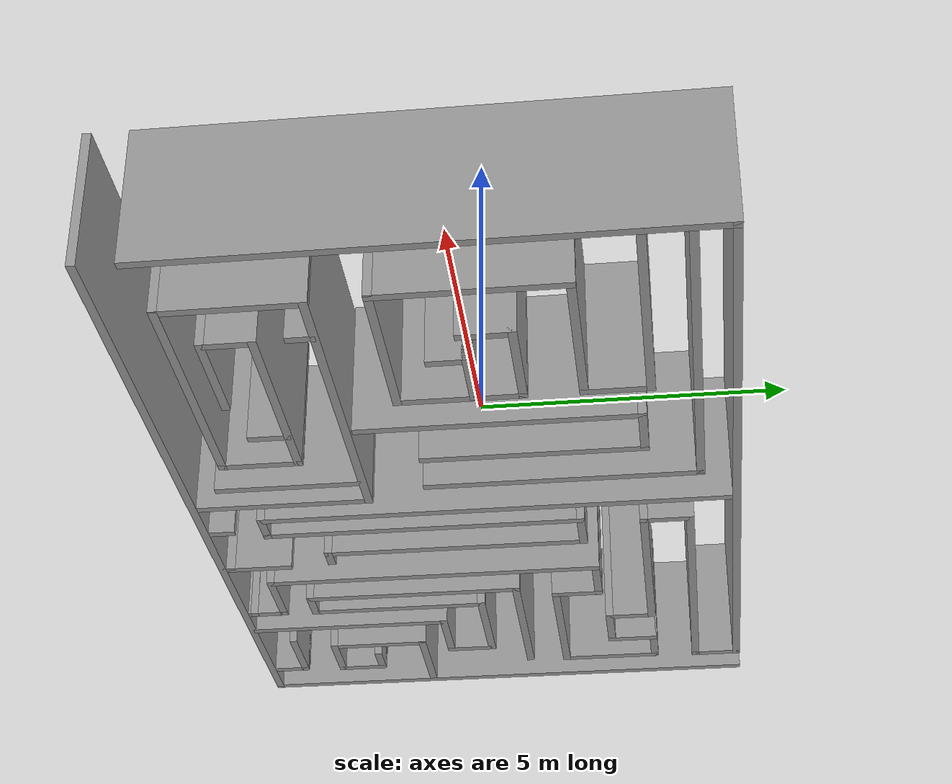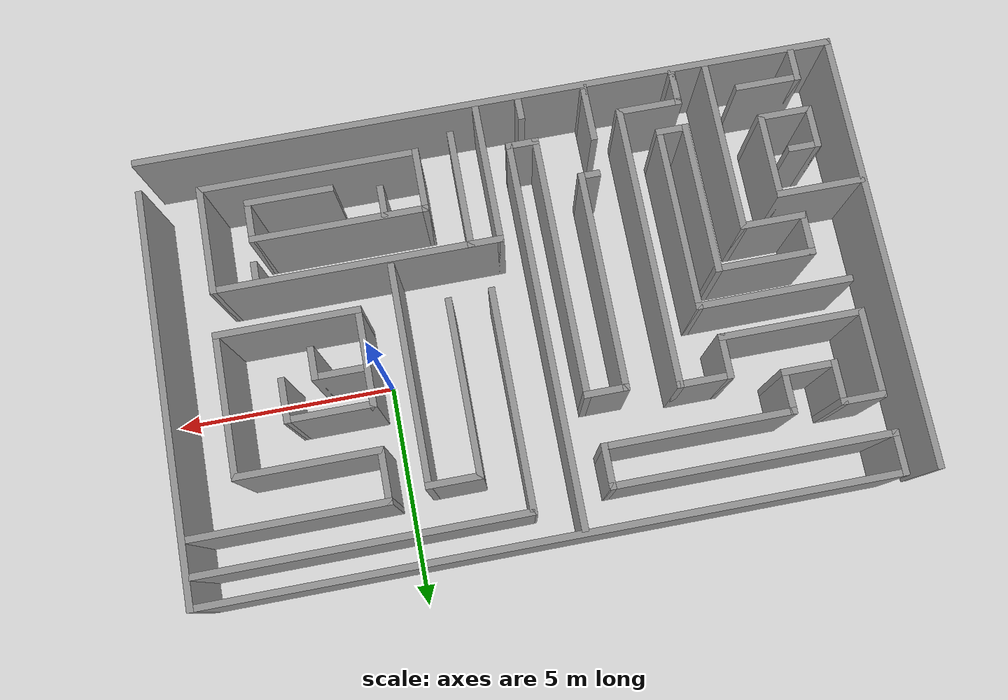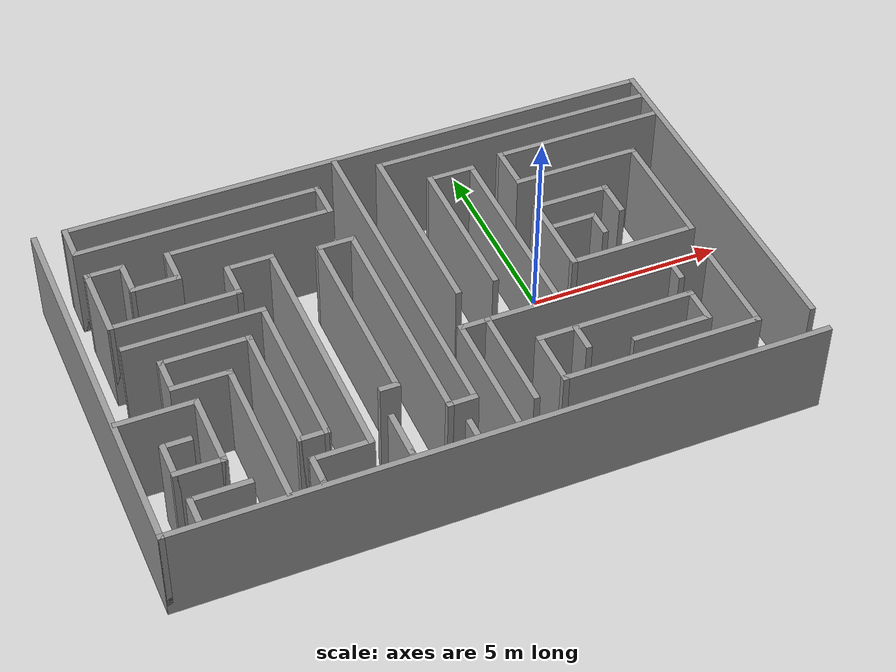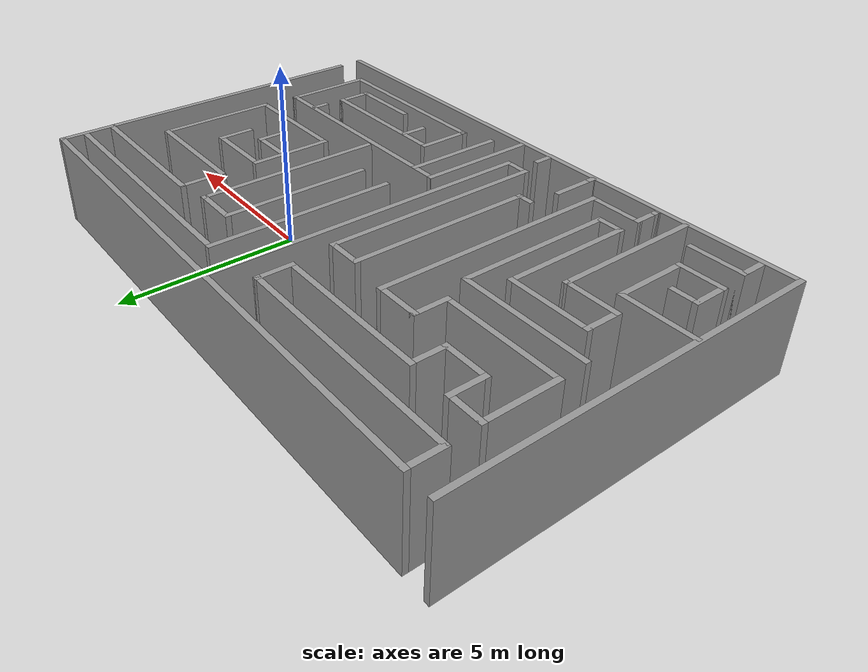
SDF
<?xml version='1.0'?>
<sdf version='1.6'>
  <model name='maze'>
    <pose frame=''>-3.28422 -0.705235 0 0 -0 0</pose>
    <link name='Wall_101'>
      <collision name='Wall_101_Collision'>
        <geometry>
          <box>
            <size>1.25 0.15 2.5</size>
          </box>
        </geometry>
        <pose frame=''>0 0 1.25 0 -0 0</pose>
      </collision>
      <visual name='Wall_101_Visual'>
        <pose frame=''>0 0 1.25 0 -0 0</pose>
        <geometry>
          <box>
            <size>1.25 0.15 2.5</size>
          </box>
        </geometry>
        <material>
          <script>
            <uri>file://media/materials/scripts/gazebo.material</uri>
            <name>Gazebo/Grey</name>
          </script>
          <ambient>1 1 1 1</ambient>
        </material>
        <meta>
          <layer>0</layer>
        </meta>
      </visual>
      <pose frame=''>4.1572 0.61365 0 0 -0 0</pose>
    </link>
    <link name='Wall_103'>
      <collision name='Wall_103_Collision'>
        <geometry>
          <box>
            <size>0.75 0.15 2.5</size>
          </box>
        </geometry>
        <pose frame=''>0 0 1.25 0 -0 0</pose>
      </collision>
      <visual name='Wall_103_Visual'>
        <pose frame=''>0 0 1.25 0 -0 0</pose>
        <geometry>
          <box>
            <size>0.75 0.15 2.5</size>
          </box>
        </geometry>
        <material>
          <script>
            <uri>file://media/materials/scripts/gazebo.material</uri>
            <name>Gazebo/Grey</name>
          </script>
          <ambient>1 1 1 1</ambient>
        </material>
        <meta>
          <layer>0</layer>
        </meta>
      </visual>
      <pose frame=''>4.7072 0.31365 0 0 0 -1.5708</pose>
    </link>
    <link name='Wall_105'>
      <collision name='Wall_105_Collision'>
        <geometry>
          <box>
            <size>2.75 0.15 2.5</size>
          </box>
        </geometry>
        <pose frame=''>0 0 1.25 0 -0 0</pose>
      </collision>
      <visual name='Wall_105_Visual'>
        <pose frame=''>0 0 1.25 0 -0 0</pose>
        <geometry>
          <box>
            <size>2.75 0.15 2.5</size>
          </box>
        </geometry>
        <material>
          <script>
            <uri>file://media/materials/scripts/gazebo.material</uri>
            <name>Gazebo/Grey</name>
          </script>
          <ambient>1 1 1 1</ambient>
        </material>
        <meta>
          <layer>0</layer>
        </meta>
      </visual>
      <pose frame=''>0.9093 -2.9875 0 0 0 -1.5708</pose>
    </link>
    <link name='Wall_107'>
      <collision name='Wall_107_Collision'>
        <geometry>
          <box>
            <size>0.5 0.15 2.5</size>
          </box>
        </geometry>
        <pose frame=''>0 0 1.25 0 -0 0</pose>
      </collision>
      <visual name='Wall_107_Visual'>
        <pose frame=''>0 0 1.25 0 -0 0</pose>
        <geometry>
          <box>
            <size>0.5 0.15 2.5</size>
          </box>
        </geometry>
        <material>
          <script>
            <uri>file://media/materials/scripts/gazebo.material</uri>
            <name>Gazebo/Grey</name>
          </script>
          <ambient>1 1 1 1</ambient>
        </material>
        <meta>
          <layer>0</layer>
        </meta>
      </visual>
      <pose frame=''>5.64385 -1.9154 0 0 0 -1.5708</pose>
    </link>
    <link name='Wall_11'>
      <collision name='Wall_11_Collision'>
        <geometry>
          <box>
            <size>15.25 0.15 2.5</size>
          </box>
        </geometry>
        <pose frame=''>0 0 1.25 0 -0 0</pose>
      </collision>
      <visual name='Wall_11_Visual'>
        <pose frame=''>0 0 1.25 0 -0 0</pose>
        <geometry>
          <box>
            <size>15.25 0.15 2.5</size>
          </box>
        </geometry>
        <material>
          <script>
            <uri>file://media/materials/scripts/gazebo.material</uri>
            <name>Gazebo/Grey</name>
          </script>
          <ambient>1 1 1 1</ambient>
        </material>
        <meta>
          <layer>0</layer>
        </meta>
      </visual>
      <pose frame=''>0.375 4.925 0 0 -0 3.14159</pose>
    </link>
    <link name='Wall_110'>
      <collision name='Wall_110_Collision'>
        <geometry>
          <box>
            <size>9.25 0.15 2.5</size>
          </box>
        </geometry>
        <pose frame=''>0 0 1.25 0 -0 0</pose>
      </collision>
      <visual name='Wall_110_Visual'>
        <pose frame=''>0 0 1.25 0 -0 0</pose>
        <geometry>
          <box>
            <size>9.25 0.15 2.5</size>
          </box>
        </geometry>
        <material>
          <script>
            <uri>file://media/materials/scripts/gazebo.material</uri>
            <name>Gazebo/Grey</name>
          </script>
          <ambient>1 1 1 1</ambient>
        </material>
        <meta>
          <layer>0</layer>
        </meta>
      </visual>
      <pose frame=''>7.925 0.375 0 0 0 -1.5708</pose>
    </link>
    <link name='Wall_12'>
      <collision name='Wall_12_Collision'>
        <geometry>
          <box>
            <size>1 0.15 2.5</size>
          </box>
        </geometry>
        <pose frame=''>0 0 1.25 0 -0 0</pose>
      </collision>
      <visual name='Wall_12_Visual'>
        <pose frame=''>0 0 1.25 0 -0 0</pose>
        <geometry>
          <box>
            <size>1 0.15 2.5</size>
          </box>
        </geometry>
        <material>
          <script>
            <uri>file://media/materials/scripts/gazebo.material</uri>
            <name>Gazebo/Grey</name>
          </script>
          <ambient>1 1 1 1</ambient>
        </material>
        <meta>
          <layer>0</layer>
        </meta>
      </visual>
      <pose frame=''>-7.175 4.5 0 0 0 -1.5708</pose>
    </link>
    <link name='Wall_13'>
      <collision name='Wall_13_Collision'>
        <geometry>
          <box>
            <size>6.25 0.15 2.5</size>
          </box>
        </geometry>
        <pose frame=''>0 0 1.25 0 -0 0</pose>
      </collision>
      <visual name='Wall_13_Visual'>
        <pose frame=''>0 0 1.25 0 -0 0</pose>
        <geometry>
          <box>
            <size>6.25 0.15 2.5</size>
          </box>
        </geometry>
        <material>
          <script>
            <uri>file://media/materials/scripts/gazebo.material</uri>
            <name>Gazebo/Grey</name>
          </script>
          <ambient>1 1 1 1</ambient>
        </material>
        <meta>
          <layer>0</layer>
        </meta>
      </visual>
      <pose frame=''>-4.125 4.075 0 0 -0 0</pose>
    </link>
    <link name='Wall_14'>
      <collision name='Wall_14_Collision'>
        <geometry>
          <box>
            <size>1 0.15 2.5</size>
          </box>
        </geometry>
        <pose frame=''>0 0 1.25 0 -0 0</pose>
      </collision>
      <visual name='Wall_14_Visual'>
        <pose frame=''>0 0 1.25 0 -0 0</pose>
        <geometry>
          <box>
            <size>1 0.15 2.5</size>
          </box>
        </geometry>
        <material>
          <script>
            <uri>file://media/materials/scripts/gazebo.material</uri>
            <name>Gazebo/Grey</name>
          </script>
          <ambient>1 1 1 1</ambient>
        </material>
        <meta>
          <layer>0</layer>
        </meta>
      </visual>
      <pose frame=''>-1.075 3.65 0 0 0 -1.5708</pose>
    </link>
    <link name='Wall_15'>
      <collision name='Wall_15_Collision'>
        <geometry>
          <box>
            <size>4.25 0.15 2.5</size>
          </box>
        </geometry>
        <pose frame=''>0 0 1.25 0 -0 0</pose>
      </collision>
      <visual name='Wall_15_Visual'>
        <pose frame=''>0 0 1.25 0 -0 0</pose>
        <geometry>
          <box>
            <size>4.25 0.15 2.5</size>
          </box>
        </geometry>
        <material>
          <script>
            <uri>file://media/materials/scripts/gazebo.material</uri>
            <name>Gazebo/Grey</name>
          </script>
          <ambient>1 1 1 1</ambient>
        </material>
        <meta>
          <layer>0</layer>
        </meta>
      </visual>
      <pose frame=''>-3.125 3.225 0 0 -0 3.14159</pose>
    </link>
    <link name='Wall_18'>
      <collision name='Wall_18_Collision'>
        <geometry>
          <box>
            <size>1 0.15 2.5</size>
          </box>
        </geometry>
        <pose frame=''>0 0 1.25 0 -0 0</pose>
      </collision>
      <visual name='Wall_18_Visual'>
        <pose frame=''>0 0 1.25 0 -0 0</pose>
        <geometry>
          <box>
            <size>1 0.15 2.5</size>
          </box>
        </geometry>
        <material>
          <script>
            <uri>file://media/materials/scripts/gazebo.material</uri>
            <name>Gazebo/Grey</name>
          </script>
          <ambient>1 1 1 1</ambient>
        </material>
        <meta>
          <layer>0</layer>
        </meta>
      </visual>
      <pose frame=''>-5.175 2.8 0 0 0 -1.5708</pose>
    </link>
    <link name='Wall_19'>
      <collision name='Wall_19_Collision'>
        <geometry>
          <box>
            <size>1.25 0.15 2.5</size>
          </box>
        </geometry>
        <pose frame=''>0 0 1.25 0 -0 0</pose>
      </collision>
      <visual name='Wall_19_Visual'>
        <pose frame=''>0 0 1.25 0 -0 0</pose>
        <geometry>
          <box>
            <size>1.25 0.15 2.5</size>
          </box>
        </geometry>
        <material>
          <script>
            <uri>file://media/materials/scripts/gazebo.material</uri>
            <name>Gazebo/Grey</name>
          </script>
          <ambient>1 1 1 1</ambient>
        </material>
        <meta>
          <layer>0</layer>
        </meta>
      </visual>
      <pose frame=''>-5.725 2.375 0 0 -0 3.14159</pose>
    </link>
    <link name='Wall_20'>
      <collision name='Wall_20_Collision'>
        <geometry>
          <box>
            <size>1 0.15 2.5</size>
          </box>
        </geometry>
        <pose frame=''>0 0 1.25 0 -0 0</pose>
      </collision>
      <visual name='Wall_20_Visual'>
        <pose frame=''>0 0 1.25 0 -0 0</pose>
        <geometry>
          <box>
            <size>1 0.15 2.5</size>
          </box>
        </geometry>
        <material>
          <script>
            <uri>file://media/materials/scripts/gazebo.material</uri>
            <name>Gazebo/Grey</name>
          </script>
          <ambient>1 1 1 1</ambient>
        </material>
        <meta>
          <layer>0</layer>
        </meta>
      </visual>
      <pose frame=''>-6.275 2.8 0 0 -0 1.5708</pose>
    </link>
    <link name='Wall_21'>
      <collision name='Wall_21_Collision'>
        <geometry>
          <box>
            <size>1 0.15 2.5</size>
          </box>
        </geometry>
        <pose frame=''>0 0 1.25 0 -0 0</pose>
      </collision>
      <visual name='Wall_21_Visual'>
        <pose frame=''>0 0 1.25 0 -0 0</pose>
        <geometry>
          <box>
            <size>1 0.15 2.5</size>
          </box>
        </geometry>
        <material>
          <script>
            <uri>file://media/materials/scripts/gazebo.material</uri>
            <name>Gazebo/Grey</name>
          </script>
          <ambient>1 1 1 1</ambient>
        </material>
        <meta>
          <layer>0</layer>
        </meta>
      </visual>
      <pose frame=''>-6.7 3.225 0 0 -0 3.14159</pose>
    </link>
    <link name='Wall_22'>
      <collision name='Wall_22_Collision'>
        <geometry>
          <box>
            <size>2 0.15 2.5</size>
          </box>
        </geometry>
        <pose frame=''>0 0 1.25 0 -0 0</pose>
      </collision>
      <visual name='Wall_22_Visual'>
        <pose frame=''>0 0 1.25 0 -0 0</pose>
        <geometry>
          <box>
            <size>2 0.15 2.5</size>
          </box>
        </geometry>
        <material>
          <script>
            <uri>file://media/materials/scripts/gazebo.material</uri>
            <name>Gazebo/Grey</name>
          </script>
          <ambient>1 1 1 1</ambient>
        </material>
        <meta>
          <layer>0</layer>
        </meta>
      </visual>
      <pose frame=''>-7.125 2.3 0 0 0 -1.5708</pose>
    </link>
    <link name='Wall_23'>
      <collision name='Wall_23_Collision'>
        <geometry>
          <box>
            <size>3.25 0.15 2.5</size>
          </box>
        </geometry>
        <pose frame=''>0 0 1.25 0 -0 0</pose>
      </collision>
      <visual name='Wall_23_Visual'>
        <pose frame=''>0 0 1.25 0 -0 0</pose>
        <geometry>
          <box>
            <size>3.25 0.15 2.5</size>
          </box>
        </geometry>
        <material>
          <script>
            <uri>file://media/materials/scripts/gazebo.material</uri>
            <name>Gazebo/Grey</name>
          </script>
          <ambient>1 1 1 1</ambient>
        </material>
        <meta>
          <layer>0</layer>
        </meta>
      </visual>
      <pose frame=''>-5.575 1.375 0 0 -0 0</pose>
    </link>
    <link name='Wall_24'>
      <collision name='Wall_24_Collision'>
        <geometry>
          <box>
            <size>1 0.15 2.5</size>
          </box>
        </geometry>
        <pose frame=''>0 0 1.25 0 -0 0</pose>
      </collision>
      <visual name='Wall_24_Visual'>
        <pose frame=''>0 0 1.25 0 -0 0</pose>
        <geometry>
          <box>
            <size>1 0.15 2.5</size>
          </box>
        </geometry>
        <material>
          <script>
            <uri>file://media/materials/scripts/gazebo.material</uri>
            <name>Gazebo/Grey</name>
          </script>
          <ambient>1 1 1 1</ambient>
        </material>
        <meta>
          <layer>0</layer>
        </meta>
      </visual>
      <pose frame=''>-4.025 1.8 0 0 -0 1.5708</pose>
    </link>
    <link name='Wall_25'>
      <collision name='Wall_25_Collision'>
        <geometry>
          <box>
            <size>1.25 0.15 2.5</size>
          </box>
        </geometry>
        <pose frame=''>0 0 1.25 0 -0 0</pose>
      </collision>
      <visual name='Wall_25_Visual'>
        <pose frame=''>0 0 1.25 0 -0 0</pose>
        <geometry>
          <box>
            <size>1.25 0.15 2.5</size>
          </box>
        </geometry>
        <material>
          <script>
            <uri>file://media/materials/scripts/gazebo.material</uri>
            <name>Gazebo/Grey</name>
          </script>
          <ambient>1 1 1 1</ambient>
        </material>
        <meta>
          <layer>0</layer>
        </meta>
      </visual>
      <pose frame=''>-3.475 2.225 0 0 -0 0</pose>
    </link>
    <link name='Wall_26'>
      <collision name='Wall_26_Collision'>
        <geometry>
          <box>
            <size>6.5 0.15 2.5</size>
          </box>
        </geometry>
        <pose frame=''>0 0 1.25 0 -0 0</pose>
      </collision>
      <visual name='Wall_26_Visual'>
        <pose frame=''>0 0 1.25 0 -0 0</pose>
        <geometry>
          <box>
            <size>6.5 0.15 2.5</size>
          </box>
        </geometry>
        <material>
          <script>
            <uri>file://media/materials/scripts/gazebo.material</uri>
            <name>Gazebo/Grey</name>
          </script>
          <ambient>1 1 1 1</ambient>
        </material>
        <meta>
          <layer>0</layer>
        </meta>
      </visual>
      <pose frame=''>-2.925 -0.95 0 0 0 -1.5708</pose>
    </link>
    <link name='Wall_28'>
      <collision name='Wall_28_Collision'>
        <geometry>
          <box>
            <size>3.5 0.15 2.5</size>
          </box>
        </geometry>
        <pose frame=''>0 0 1.25 0 -0 0</pose>
      </collision>
      <visual name='Wall_28_Visual'>
        <pose frame=''>0 0 1.25 0 -0 0</pose>
        <geometry>
          <box>
            <size>3.5 0.15 2.5</size>
          </box>
        </geometry>
        <material>
          <script>
            <uri>file://media/materials/scripts/gazebo.material</uri>
            <name>Gazebo/Grey</name>
          </script>
          <ambient>1 1 1 1</ambient>
        </material>
        <meta>
          <layer>0</layer>
        </meta>
      </visual>
      <pose frame=''>-5.37715 0.61365 0 0 -0 0</pose>
    </link>
    <link name='Wall_29'>
      <collision name='Wall_29_Collision'>
        <geometry>
          <box>
            <size>4.25 0.15 2.5</size>
          </box>
        </geometry>
        <pose frame=''>0 0 1.25 0 -0 0</pose>
      </collision>
      <visual name='Wall_29_Visual'>
        <pose frame=''>0 0 1.25 0 -0 0</pose>
        <geometry>
          <box>
            <size>4.25 0.15 2.5</size>
          </box>
        </geometry>
        <material>
          <script>
            <uri>file://media/materials/scripts/gazebo.material</uri>
            <name>Gazebo/Grey</name>
          </script>
          <ambient>1 1 1 1</ambient>
        </material>
        <meta>
          <layer>0</layer>
        </meta>
      </visual>
      <pose frame=''>-3.70215 -1.43635 0 0 0 -1.5708</pose>
    </link>
    <link name='Wall_32'>
      <collision name='Wall_32_Collision'>
        <geometry>
          <box>
            <size>0.75 0.15 2.5</size>
          </box>
        </geometry>
        <pose frame=''>0 0 1.25 0 -0 0</pose>
      </collision>
      <visual name='Wall_32_Visual'>
        <pose frame=''>0 0 1.25 0 -0 0</pose>
        <geometry>
          <box>
            <size>0.75 0.15 2.5</size>
          </box>
        </geometry>
        <material>
          <script>
            <uri>file://media/materials/scripts/gazebo.material</uri>
            <name>Gazebo/Grey</name>
          </script>
          <ambient>1 1 1 1</ambient>
        </material>
        <meta>
          <layer>0</layer>
        </meta>
      </visual>
      <pose frame=''>-4.00215 -3.48635 0 0 -0 3.14159</pose>
    </link>
    <link name='Wall_33'>
      <collision name='Wall_33_Collision'>
        <geometry>
          <box>
            <size>3.5 0.15 2.5</size>
          </box>
        </geometry>
        <pose frame=''>0 0 1.25 0 -0 0</pose>
      </collision>
      <visual name='Wall_33_Visual'>
        <pose frame=''>0 0 1.25 0 -0 0</pose>
        <geometry>
          <box>
            <size>3.5 0.15 2.5</size>
          </box>
        </geometry>
        <material>
          <script>
            <uri>file://media/materials/scripts/gazebo.material</uri>
            <name>Gazebo/Grey</name>
          </script>
          <ambient>1 1 1 1</ambient>
        </material>
        <meta>
          <layer>0</layer>
        </meta>
      </visual>
      <pose frame=''>-4.30215 -1.81135 0 0 -0 1.5708</pose>
    </link>
    <link name='Wall_34'>
      <collision name='Wall_34_Collision'>
        <geometry>
          <box>
            <size>2.25 0.15 2.5</size>
          </box>
        </geometry>
        <pose frame=''>0 0 1.25 0 -0 0</pose>
      </collision>
      <visual name='Wall_34_Visual'>
        <pose frame=''>0 0 1.25 0 -0 0</pose>
        <geometry>
          <box>
            <size>2.25 0.15 2.5</size>
          </box>
        </geometry>
        <material>
          <script>
            <uri>file://media/materials/scripts/gazebo.material</uri>
            <name>Gazebo/Grey</name>
          </script>
          <ambient>1 1 1 1</ambient>
        </material>
        <meta>
          <layer>0</layer>
        </meta>
      </visual>
      <pose frame=''>-5.35215 -0.13635 0 0 -0 3.14159</pose>
    </link>
    <link name='Wall_37'>
      <collision name='Wall_37_Collision'>
        <geometry>
          <box>
            <size>1 0.15 2.5</size>
          </box>
        </geometry>
        <pose frame=''>0 0 1.25 0 -0 0</pose>
      </collision>
      <visual name='Wall_37_Visual'>
        <pose frame=''>0 0 1.25 0 -0 0</pose>
        <geometry>
          <box>
            <size>1 0.15 2.5</size>
          </box>
        </geometry>
        <material>
          <script>
            <uri>file://media/materials/scripts/gazebo.material</uri>
            <name>Gazebo/Grey</name>
          </script>
          <ambient>1 1 1 1</ambient>
        </material>
        <meta>
          <layer>0</layer>
        </meta>
      </visual>
      <pose frame=''>-6.40215 -0.56135 0 0 0 -1.5708</pose>
    </link>
    <link name='Wall_38'>
      <collision name='Wall_38_Collision'>
        <geometry>
          <box>
            <size>1.5 0.15 2.5</size>
          </box>
        </geometry>
        <pose frame=''>0 0 1.25 0 -0 0</pose>
      </collision>
      <visual name='Wall_38_Visual'>
        <pose frame=''>0 0 1.25 0 -0 0</pose>
        <geometry>
          <box>
            <size>1.5 0.15 2.5</size>
          </box>
        </geometry>
        <material>
          <script>
            <uri>file://media/materials/scripts/gazebo.material</uri>
            <name>Gazebo/Grey</name>
          </script>
          <ambient>1 1 1 1</ambient>
        </material>
        <meta>
          <layer>0</layer>
        </meta>
      </visual>
      <pose frame=''>-5.72715 -0.98635 0 0 -0 0</pose>
    </link>
    <link name='Wall_39'>
      <collision name='Wall_39_Collision'>
        <geometry>
          <box>
            <size>4 0.15 2.5</size>
          </box>
        </geometry>
        <pose frame=''>0 0 1.25 0 -0 0</pose>
      </collision>
      <visual name='Wall_39_Visual'>
        <pose frame=''>0 0 1.25 0 -0 0</pose>
        <geometry>
          <box>
            <size>4 0.15 2.5</size>
          </box>
        </geometry>
        <material>
          <script>
            <uri>file://media/materials/scripts/gazebo.material</uri>
            <name>Gazebo/Grey</name>
          </script>
          <ambient>1 1 1 1</ambient>
        </material>
        <meta>
          <layer>0</layer>
        </meta>
      </visual>
      <pose frame=''>-5.05215 -2.91135 0 0 0 -1.5708</pose>
    </link>
    <link name='Wall_41'>
      <collision name='Wall_41_Collision'>
        <geometry>
          <box>
            <size>2 0.15 2.5</size>
          </box>
        </geometry>
        <pose frame=''>0 0 1.25 0 -0 0</pose>
      </collision>
      <visual name='Wall_41_Visual'>
        <pose frame=''>0 0 1.25 0 -0 0</pose>
        <geometry>
          <box>
            <size>2 0.15 2.5</size>
          </box>
        </geometry>
        <material>
          <script>
            <uri>file://media/materials/scripts/gazebo.material</uri>
            <name>Gazebo/Grey</name>
          </script>
          <ambient>1 1 1 1</ambient>
        </material>
        <meta>
          <layer>0</layer>
        </meta>
      </visual>
      <pose frame=''>-6.9471 -1.55525 0 0 -0 0</pose>
    </link>
    <link name='Wall_45'>
      <collision name='Wall_45_Collision'>
        <geometry>
          <box>
            <size>2 0.15 2.5</size>
          </box>
        </geometry>
        <pose frame=''>0 0 1.25 0 -0 0</pose>
      </collision>
      <visual name='Wall_45_Visual'>
        <pose frame=''>0 0 1.25 0 -0 0</pose>
        <geometry>
          <box>
            <size>2 0.15 2.5</size>
          </box>
        </geometry>
        <material>
          <script>
            <uri>file://media/materials/scripts/gazebo.material</uri>
            <name>Gazebo/Grey</name>
          </script>
          <ambient>1 1 1 1</ambient>
        </material>
        <meta>
          <layer>0</layer>
        </meta>
      </visual>
      <pose frame=''>-6.0221 -2.48025 0 0 0 -1.5708</pose>
    </link>
    <link name='Wall_46'>
      <collision name='Wall_46_Collision'>
        <geometry>
          <box>
            <size>1.25 0.15 2.5</size>
          </box>
        </geometry>
        <pose frame=''>0 0 1.25 0 -0 0</pose>
      </collision>
      <visual name='Wall_46_Visual'>
        <pose frame=''>0 0 1.25 0 -0 0</pose>
        <geometry>
          <box>
            <size>1.25 0.15 2.5</size>
          </box>
        </geometry>
        <material>
          <script>
            <uri>file://media/materials/scripts/gazebo.material</uri>
            <name>Gazebo/Grey</name>
          </script>
          <ambient>1 1 1 1</ambient>
        </material>
        <meta>
          <layer>0</layer>
        </meta>
      </visual>
      <pose frame=''>-6.5721 -3.40525 0 0 -0 3.14159</pose>
    </link>
    <link name='Wall_47'>
      <collision name='Wall_47_Collision'>
        <geometry>
          <box>
            <size>1 0.15 2.5</size>
          </box>
        </geometry>
        <pose frame=''>0 0 1.25 0 -0 0</pose>
      </collision>
      <visual name='Wall_47_Visual'>
        <pose frame=''>0 0 1.25 0 -0 0</pose>
        <geometry>
          <box>
            <size>1 0.15 2.5</size>
          </box>
        </geometry>
        <material>
          <script>
            <uri>file://media/materials/scripts/gazebo.material</uri>
            <name>Gazebo/Grey</name>
          </script>
          <ambient>1 1 1 1</ambient>
        </material>
        <meta>
          <layer>0</layer>
        </meta>
      </visual>
      <pose frame=''>-7.1221 -2.98025 0 0 -0 1.5708</pose>
    </link>
    <link name='Wall_48'>
      <collision name='Wall_48_Collision'>
        <geometry>
          <box>
            <size>0.75 0.15 2.5</size>
          </box>
        </geometry>
        <pose frame=''>0 0 1.25 0 -0 0</pose>
      </collision>
      <visual name='Wall_48_Visual'>
        <pose frame=''>0 0 1.25 0 -0 0</pose>
        <geometry>
          <box>
            <size>0.75 0.15 2.5</size>
          </box>
        </geometry>
        <material>
          <script>
            <uri>file://media/materials/scripts/gazebo.material</uri>
            <name>Gazebo/Grey</name>
          </script>
          <ambient>1 1 1 1</ambient>
        </material>
        <meta>
          <layer>0</layer>
        </meta>
      </visual>
      <pose frame=''>-6.8221 -2.55525 0 0 -0 0</pose>
    </link>
    <link name='Wall_50'>
      <collision name='Wall_50_Collision'>
        <geometry>
          <box>
            <size>0.75 0.15 2.5</size>
          </box>
        </geometry>
        <pose frame=''>0 0 1.25 0 -0 0</pose>
      </collision>
      <visual name='Wall_50_Visual'>
        <pose frame=''>0 0 1.25 0 -0 0</pose>
        <geometry>
          <box>
            <size>0.75 0.15 2.5</size>
          </box>
        </geometry>
        <material>
          <script>
            <uri>file://media/materials/scripts/gazebo.material</uri>
            <name>Gazebo/Grey</name>
          </script>
          <ambient>1 1 1 1</ambient>
        </material>
        <meta>
          <layer>0</layer>
        </meta>
      </visual>
      <pose frame=''>-7.05215 -4.5086 0 0 -0 1.5708</pose>
    </link>
    <link name='Wall_51'>
      <collision name='Wall_51_Collision'>
        <geometry>
          <box>
            <size>1.5 0.15 2.5</size>
          </box>
        </geometry>
        <pose frame=''>0 0 1.25 0 -0 0</pose>
      </collision>
      <visual name='Wall_51_Visual'>
        <pose frame=''>0 0 1.25 0 -0 0</pose>
        <geometry>
          <box>
            <size>1.5 0.15 2.5</size>
          </box>
        </geometry>
        <material>
          <script>
            <uri>file://media/materials/scripts/gazebo.material</uri>
            <name>Gazebo/Grey</name>
          </script>
          <ambient>1 1 1 1</ambient>
        </material>
        <meta>
          <layer>0</layer>
        </meta>
      </visual>
      <pose frame=''>-6.37715 -4.2086 0 0 -0 0</pose>
    </link>
    <link name='Wall_53'>
      <collision name='Wall_53_Collision'>
        <geometry>
          <box>
            <size>8.75 0.15 2.5</size>
          </box>
        </geometry>
        <pose frame=''>0 0 1.25 0 -0 0</pose>
      </collision>
      <visual name='Wall_53_Visual'>
        <pose frame=''>0 0 1.25 0 -0 0</pose>
        <geometry>
          <box>
            <size>8.75 0.15 2.5</size>
          </box>
        </geometry>
        <material>
          <script>
            <uri>file://media/materials/scripts/gazebo.material</uri>
            <name>Gazebo/Grey</name>
          </script>
          <ambient>1 1 1 1</ambient>
        </material>
        <meta>
          <layer>0</layer>
        </meta>
      </visual>
      <pose frame=''>-0.33385 0.5192 0 0 0 -1.5708</pose>
    </link>
    <link name='Wall_54'>
      <collision name='Wall_54_Collision'>
        <geometry>
          <box>
            <size>0.75 0.15 2.5</size>
          </box>
        </geometry>
        <pose frame=''>0 0 1.25 0 -0 0</pose>
      </collision>
      <visual name='Wall_54_Visual'>
        <pose frame=''>0 0 1.25 0 -0 0</pose>
        <geometry>
          <box>
            <size>0.75 0.15 2.5</size>
          </box>
        </geometry>
        <material>
          <script>
            <uri>file://media/materials/scripts/gazebo.material</uri>
            <name>Gazebo/Grey</name>
          </script>
          <ambient>1 1 1 1</ambient>
        </material>
        <meta>
          <layer>0</layer>
        </meta>
      </visual>
      <pose frame=''>-0.63385 -3.7808 0 0 -0 3.14159</pose>
    </link>
    <link name='Wall_55'>
      <collision name='Wall_55_Collision'>
        <geometry>
          <box>
            <size>6 0.15 2.5</size>
          </box>
        </geometry>
        <pose frame=''>0 0 1.25 0 -0 0</pose>
      </collision>
      <visual name='Wall_55_Visual'>
        <pose frame=''>0 0 1.25 0 -0 0</pose>
        <geometry>
          <box>
            <size>6 0.15 2.5</size>
          </box>
        </geometry>
        <material>
          <script>
            <uri>file://media/materials/scripts/gazebo.material</uri>
            <name>Gazebo/Grey</name>
          </script>
          <ambient>1 1 1 1</ambient>
        </material>
        <meta>
          <layer>0</layer>
        </meta>
      </visual>
      <pose frame=''>-0.93385 -0.8558 0 0 -0 1.5708</pose>
    </link>
    <link name='Wall_56'>
      <collision name='Wall_56_Collision'>
        <geometry>
          <box>
            <size>1 0.15 2.5</size>
          </box>
        </geometry>
        <pose frame=''>0 0 1.25 0 -0 0</pose>
      </collision>
      <visual name='Wall_56_Visual'>
        <pose frame=''>0 0 1.25 0 -0 0</pose>
        <geometry>
          <box>
            <size>1 0.15 2.5</size>
          </box>
        </geometry>
        <material>
          <script>
            <uri>file://media/materials/scripts/gazebo.material</uri>
            <name>Gazebo/Grey</name>
          </script>
          <ambient>1 1 1 1</ambient>
        </material>
        <meta>
          <layer>0</layer>
        </meta>
      </visual>
      <pose frame=''>-1.35885 2.0692 0 0 -0 3.14159</pose>
    </link>
    <link name='Wall_57'>
      <collision name='Wall_57_Collision'>
        <geometry>
          <box>
            <size>5 0.15 2.5</size>
          </box>
        </geometry>
        <pose frame=''>0 0 1.25 0 -0 0</pose>
      </collision>
      <visual name='Wall_57_Visual'>
        <pose frame=''>0 0 1.25 0 -0 0</pose>
        <geometry>
          <box>
            <size>5 0.15 2.5</size>
          </box>
        </geometry>
        <material>
          <script>
            <uri>file://media/materials/scripts/gazebo.material</uri>
            <name>Gazebo/Grey</name>
          </script>
          <ambient>1 1 1 1</ambient>
        </material>
        <meta>
          <layer>0</layer>
        </meta>
      </visual>
      <pose frame=''>-1.78385 -0.3558 0 0 0 -1.5708</pose>
    </link>
    <link name='Wall_58'>
      <collision name='Wall_58_Collision'>
        <geometry>
          <box>
            <size>0.5 0.15 2.5</size>
          </box>
        </geometry>
        <pose frame=''>0 0 1.25 0 -0 0</pose>
      </collision>
      <visual name='Wall_58_Visual'>
        <pose frame=''>0 0 1.25 0 -0 0</pose>
        <geometry>
          <box>
            <size>0.5 0.15 2.5</size>
          </box>
        </geometry>
        <material>
          <script>
            <uri>file://media/materials/scripts/gazebo.material</uri>
            <name>Gazebo/Grey</name>
          </script>
          <ambient>1 1 1 1</ambient>
        </material>
        <meta>
          <layer>0</layer>
        </meta>
      </visual>
      <pose frame=''>-1.95885 -2.7808 0 0 -0 3.14159</pose>
    </link>
    <link name='Wall_60'>
      <collision name='Wall_60_Collision'>
        <geometry>
          <box>
            <size>1.5 0.15 2.5</size>
          </box>
        </geometry>
        <pose frame=''>0 0 1.25 0 -0 0</pose>
      </collision>
      <visual name='Wall_60_Visual'>
        <pose frame=''>0 0 1.25 0 -0 0</pose>
        <geometry>
          <box>
            <size>1.5 0.15 2.5</size>
          </box>
        </geometry>
        <material>
          <script>
            <uri>file://media/materials/scripts/gazebo.material</uri>
            <name>Gazebo/Grey</name>
          </script>
          <ambient>1 1 1 1</ambient>
        </material>
        <meta>
          <layer>0</layer>
        </meta>
      </visual>
      <pose frame=''>-3.6 -4.125 0 0 -0 3.14159</pose>
    </link>
    <link name='Wall_61'>
      <collision name='Wall_61_Collision'>
        <geometry>
          <box>
            <size>0.75 0.15 2.5</size>
          </box>
        </geometry>
        <pose frame=''>0 0 1.25 0 -0 0</pose>
      </collision>
      <visual name='Wall_61_Visual'>
        <pose frame=''>0 0 1.25 0 -0 0</pose>
        <geometry>
          <box>
            <size>0.75 0.15 2.5</size>
          </box>
        </geometry>
        <material>
          <script>
            <uri>file://media/materials/scripts/gazebo.material</uri>
            <name>Gazebo/Grey</name>
          </script>
          <ambient>1 1 1 1</ambient>
        </material>
        <meta>
          <layer>0</layer>
        </meta>
      </visual>
      <pose frame=''>-4.275 -4.425 0 0 0 -1.5708</pose>
    </link>
    <link name='Wall_63'>
      <collision name='Wall_63_Collision'>
        <geometry>
          <box>
            <size>0.15 0.15 2.5</size>
          </box>
        </geometry>
        <pose frame=''>0 0 1.25 0 -0 0</pose>
      </collision>
      <visual name='Wall_63_Visual'>
        <pose frame=''>0 0 1.25 0 -0 0</pose>
        <geometry>
          <box>
            <size>0.15 0.15 2.5</size>
          </box>
        </geometry>
        <material>
          <script>
            <uri>file://media/materials/scripts/gazebo.material</uri>
            <name>Gazebo/Grey</name>
          </script>
          <ambient>1 1 1 1</ambient>
        </material>
        <meta>
          <layer>0</layer>
        </meta>
      </visual>
      <pose frame=''>-4.275 -4.725 0 0 -0 0</pose>
    </link>
    <link name='Wall_64'>
      <collision name='Wall_64_Collision'>
        <geometry>
          <box>
            <size>0.25 0.15 2.5</size>
          </box>
        </geometry>
        <pose frame=''>0 0 1.25 0 -0 0</pose>
      </collision>
      <visual name='Wall_64_Visual'>
        <pose frame=''>0 0 1.25 0 -0 0</pose>
        <geometry>
          <box>
            <size>0.25 0.15 2.5</size>
          </box>
        </geometry>
        <material>
          <script>
            <uri>file://media/materials/scripts/gazebo.material</uri>
            <name>Gazebo/Grey</name>
          </script>
          <ambient>1 1 1 1</ambient>
        </material>
        <meta>
          <layer>0</layer>
        </meta>
      </visual>
      <pose frame=''>-4.275 -4.775 0 0 0 -1.5708</pose>
    </link>
    <link name='Wall_66'>
      <collision name='Wall_66_Collision'>
        <geometry>
          <box>
            <size>1.25 0.15 2.5</size>
          </box>
        </geometry>
        <pose frame=''>0 0 1.25 0 -0 0</pose>
      </collision>
      <visual name='Wall_66_Visual'>
        <pose frame=''>0 0 1.25 0 -0 0</pose>
        <geometry>
          <box>
            <size>1.25 0.15 2.5</size>
          </box>
        </geometry>
        <material>
          <script>
            <uri>file://media/materials/scripts/gazebo.material</uri>
            <name>Gazebo/Grey</name>
          </script>
          <ambient>1 1 1 1</ambient>
        </material>
        <meta>
          <layer>0</layer>
        </meta>
      </visual>
      <pose frame=''>-2.23825 -4.1948 0 0 0 -1.5708</pose>
    </link>
    <link name='Wall_67'>
      <collision name='Wall_67_Collision'>
        <geometry>
          <box>
            <size>0.25 0.15 2.5</size>
          </box>
        </geometry>
        <pose frame=''>0 0 1.25 0 -0 0</pose>
      </collision>
      <visual name='Wall_67_Visual'>
        <pose frame=''>0 0 1.25 0 -0 0</pose>
        <geometry>
          <box>
            <size>0.25 0.15 2.5</size>
          </box>
        </geometry>
        <material>
          <script>
            <uri>file://media/materials/scripts/gazebo.material</uri>
            <name>Gazebo/Grey</name>
          </script>
          <ambient>1 1 1 1</ambient>
        </material>
        <meta>
          <layer>0</layer>
        </meta>
      </visual>
      <pose frame=''>-2.23825 -4.7948 0 0 0 -1.5708</pose>
    </link>
    <link name='Wall_69'>
      <collision name='Wall_69_Collision'>
        <geometry>
          <box>
            <size>7.25 0.15 2.5</size>
          </box>
        </geometry>
        <pose frame=''>0 0 1.25 0 -0 0</pose>
      </collision>
      <visual name='Wall_69_Visual'>
        <pose frame=''>0 0 1.25 0 -0 0</pose>
        <geometry>
          <box>
            <size>7.25 0.15 2.5</size>
          </box>
        </geometry>
        <material>
          <script>
            <uri>file://media/materials/scripts/gazebo.material</uri>
            <name>Gazebo/Grey</name>
          </script>
          <ambient>1 1 1 1</ambient>
        </material>
        <meta>
          <layer>0</layer>
        </meta>
      </visual>
      <pose frame=''>4.24515 4.2902 0 0 -0 0</pose>
    </link>
    <link name='Wall_71'>
      <collision name='Wall_71_Collision'>
        <geometry>
          <box>
            <size>5 0.15 2.5</size>
          </box>
        </geometry>
        <pose frame=''>0 0 1.25 0 -0 0</pose>
      </collision>
      <visual name='Wall_71_Visual'>
        <pose frame=''>0 0 1.25 0 -0 0</pose>
        <geometry>
          <box>
            <size>5 0.15 2.5</size>
          </box>
        </geometry>
        <material>
          <script>
            <uri>file://media/materials/scripts/gazebo.material</uri>
            <name>Gazebo/Grey</name>
          </script>
          <ambient>1 1 1 1</ambient>
        </material>
        <meta>
          <layer>0</layer>
        </meta>
      </visual>
      <pose frame=''>0.6448 1.8652 0 0 0 -1.5708</pose>
    </link>
    <link name='Wall_73'>
      <collision name='Wall_73_Collision'>
        <geometry>
          <box>
            <size>0.5 0.15 2.5</size>
          </box>
        </geometry>
        <pose frame=''>0 0 1.25 0 -0 0</pose>
      </collision>
      <visual name='Wall_73_Visual'>
        <pose frame=''>0 0 1.25 0 -0 0</pose>
        <geometry>
          <box>
            <size>0.5 0.15 2.5</size>
          </box>
        </geometry>
        <material>
          <script>
            <uri>file://media/materials/scripts/gazebo.material</uri>
            <name>Gazebo/Grey</name>
          </script>
          <ambient>1 1 1 1</ambient>
        </material>
        <meta>
          <layer>0</layer>
        </meta>
      </visual>
      <pose frame=''>-0.7306 -4.60715 0 0 -0 1.5708</pose>
    </link>
    <link name='Wall_75'>
      <collision name='Wall_75_Collision'>
        <geometry>
          <box>
            <size>3.25 0.15 2.5</size>
          </box>
        </geometry>
        <pose frame=''>0 0 1.25 0 -0 0</pose>
      </collision>
      <visual name='Wall_75_Visual'>
        <pose frame=''>0 0 1.25 0 -0 0</pose>
        <geometry>
          <box>
            <size>3.25 0.15 2.5</size>
          </box>
        </geometry>
        <material>
          <script>
            <uri>file://media/materials/scripts/gazebo.material</uri>
            <name>Gazebo/Grey</name>
          </script>
          <ambient>1 1 1 1</ambient>
        </material>
        <meta>
          <layer>0</layer>
        </meta>
      </visual>
      <pose frame=''>0.24805 -3.23215 0 0 -0 1.5708</pose>
    </link>
    <link name='Wall_76'>
      <collision name='Wall_76_Collision'>
        <geometry>
          <box>
            <size>6.5 0.15 2.5</size>
          </box>
        </geometry>
        <pose frame=''>0 0 1.25 0 -0 0</pose>
      </collision>
      <visual name='Wall_76_Visual'>
        <pose frame=''>0 0 1.25 0 -0 0</pose>
        <geometry>
          <box>
            <size>6.5 0.15 2.5</size>
          </box>
        </geometry>
        <material>
          <script>
            <uri>file://media/materials/scripts/gazebo.material</uri>
            <name>Gazebo/Grey</name>
          </script>
          <ambient>1 1 1 1</ambient>
        </material>
        <meta>
          <layer>0</layer>
        </meta>
      </visual>
      <pose frame=''>3.42305 -1.68215 0 0 -0 0</pose>
    </link>
    <link name='Wall_77'>
      <collision name='Wall_77_Collision'>
        <geometry>
          <box>
            <size>2.5 0.15 2.5</size>
          </box>
        </geometry>
        <pose frame=''>0 0 1.25 0 -0 0</pose>
      </collision>
      <visual name='Wall_77_Visual'>
        <pose frame=''>0 0 1.25 0 -0 0</pose>
        <geometry>
          <box>
            <size>2.5 0.15 2.5</size>
          </box>
        </geometry>
        <material>
          <script>
            <uri>file://media/materials/scripts/gazebo.material</uri>
            <name>Gazebo/Grey</name>
          </script>
          <ambient>1 1 1 1</ambient>
        </material>
        <meta>
          <layer>0</layer>
        </meta>
      </visual>
      <pose frame=''>6.59805 -2.85715 0 0 0 -1.5708</pose>
    </link>
    <link name='Wall_78'>
      <collision name='Wall_78_Collision'>
        <geometry>
          <box>
            <size>5 0.15 2.5</size>
          </box>
        </geometry>
        <pose frame=''>0 0 1.25 0 -0 0</pose>
      </collision>
      <visual name='Wall_78_Visual'>
        <pose frame=''>0 0 1.25 0 -0 0</pose>
        <geometry>
          <box>
            <size>5 0.15 2.5</size>
          </box>
        </geometry>
        <material>
          <script>
            <uri>file://media/materials/scripts/gazebo.material</uri>
            <name>Gazebo/Grey</name>
          </script>
          <ambient>1 1 1 1</ambient>
        </material>
        <meta>
          <layer>0</layer>
        </meta>
      </visual>
      <pose frame=''>4.17305 -4.03215 0 0 -0 3.14159</pose>
    </link>
    <link name='Wall_79'>
      <collision name='Wall_79_Collision'>
        <geometry>
          <box>
            <size>1.5 0.15 2.5</size>
          </box>
        </geometry>
        <pose frame=''>0 0 1.25 0 -0 0</pose>
      </collision>
      <visual name='Wall_79_Visual'>
        <pose frame=''>0 0 1.25 0 -0 0</pose>
        <geometry>
          <box>
            <size>1.5 0.15 2.5</size>
          </box>
        </geometry>
        <material>
          <script>
            <uri>file://media/materials/scripts/gazebo.material</uri>
            <name>Gazebo/Grey</name>
          </script>
          <ambient>1 1 1 1</ambient>
        </material>
        <meta>
          <layer>0</layer>
        </meta>
      </visual>
      <pose frame=''>1.74805 -3.35715 0 0 -0 1.5708</pose>
    </link>
    <link name='Wall_8'>
      <collision name='Wall_8_Collision'>
        <geometry>
          <box>
            <size>10 0.15 2.5</size>
          </box>
        </geometry>
        <pose frame=''>0 0 1.25 0 -0 0</pose>
      </collision>
      <visual name='Wall_8_Visual'>
        <pose frame=''>0 0 1.25 0 -0 0</pose>
        <geometry>
          <box>
            <size>10 0.15 2.5</size>
          </box>
        </geometry>
        <material>
          <script>
            <uri>file://media/materials/scripts/gazebo.material</uri>
            <name>Gazebo/Grey</name>
          </script>
          <ambient>1 1 1 1</ambient>
        </material>
        <meta>
          <layer>0</layer>
        </meta>
      </visual>
      <pose frame=''>-7.925 0 0 0 0 -1.5708</pose>
    </link>
    <link name='Wall_80'>
      <collision name='Wall_80_Collision'>
        <geometry>
          <box>
            <size>4 0.15 2.5</size>
          </box>
        </geometry>
        <pose frame=''>0 0 1.25 0 -0 0</pose>
      </collision>
      <visual name='Wall_80_Visual'>
        <pose frame=''>0 0 1.25 0 -0 0</pose>
        <geometry>
          <box>
            <size>4 0.15 2.5</size>
          </box>
        </geometry>
        <material>
          <script>
            <uri>file://media/materials/scripts/gazebo.material</uri>
            <name>Gazebo/Grey</name>
          </script>
          <ambient>1 1 1 1</ambient>
        </material>
        <meta>
          <layer>0</layer>
        </meta>
      </visual>
      <pose frame=''>3.67305 -2.68215 0 0 -0 0</pose>
    </link>
    <link name='Wall_81'>
      <collision name='Wall_81_Collision'>
        <geometry>
          <box>
            <size>1 0.15 2.5</size>
          </box>
        </geometry>
        <pose frame=''>0 0 1.25 0 -0 0</pose>
      </collision>
      <visual name='Wall_81_Visual'>
        <pose frame=''>0 0 1.25 0 -0 0</pose>
        <geometry>
          <box>
            <size>1 0.15 2.5</size>
          </box>
        </geometry>
        <material>
          <script>
            <uri>file://media/materials/scripts/gazebo.material</uri>
            <name>Gazebo/Grey</name>
          </script>
          <ambient>1 1 1 1</ambient>
        </material>
        <meta>
          <layer>0</layer>
        </meta>
      </visual>
      <pose frame=''>5.59805 -3.10715 0 0 0 -1.5708</pose>
    </link>
    <link name='Wall_82'>
      <collision name='Wall_82_Collision'>
        <geometry>
          <box>
            <size>2 0.15 2.5</size>
          </box>
        </geometry>
        <pose frame=''>0 0 1.25 0 -0 0</pose>
      </collision>
      <visual name='Wall_82_Visual'>
        <pose frame=''>0 0 1.25 0 -0 0</pose>
        <geometry>
          <box>
            <size>2 0.15 2.5</size>
          </box>
        </geometry>
        <material>
          <script>
            <uri>file://media/materials/scripts/gazebo.material</uri>
            <name>Gazebo/Grey</name>
          </script>
          <ambient>1 1 1 1</ambient>
        </material>
        <meta>
          <layer>0</layer>
        </meta>
      </visual>
      <pose frame=''>4.67305 -3.53215 0 0 -0 3.14159</pose>
    </link>
    <link name='Wall_84'>
      <collision name='Wall_84_Collision'>
        <geometry>
          <box>
            <size>0.75 0.15 2.5</size>
          </box>
        </geometry>
        <pose frame=''>0 0 1.25 0 -0 0</pose>
      </collision>
      <visual name='Wall_84_Visual'>
        <pose frame=''>0 0 1.25 0 -0 0</pose>
        <geometry>
          <box>
            <size>0.75 0.15 2.5</size>
          </box>
        </geometry>
        <material>
          <script>
            <uri>file://media/materials/scripts/gazebo.material</uri>
            <name>Gazebo/Grey</name>
          </script>
          <ambient>1 1 1 1</ambient>
        </material>
        <meta>
          <layer>0</layer>
        </meta>
      </visual>
      <pose frame=''>2.655 -3.01905 0 0 0 -1.5708</pose>
    </link>
    <link name='Wall_86'>
      <collision name='Wall_86_Collision'>
        <geometry>
          <box>
            <size>5 0.15 2.5</size>
          </box>
        </geometry>
        <pose frame=''>0 0 1.25 0 -0 0</pose>
      </collision>
      <visual name='Wall_86_Visual'>
        <pose frame=''>0 0 1.25 0 -0 0</pose>
        <geometry>
          <box>
            <size>5 0.15 2.5</size>
          </box>
        </geometry>
        <material>
          <script>
            <uri>file://media/materials/scripts/gazebo.material</uri>
            <name>Gazebo/Grey</name>
          </script>
          <ambient>1 1 1 1</ambient>
        </material>
        <meta>
          <layer>0</layer>
        </meta>
      </visual>
      <pose frame=''>2.7079 0.92265 0 0 -0 1.5708</pose>
    </link>
    <link name='Wall_87'>
      <collision name='Wall_87_Collision'>
        <geometry>
          <box>
            <size>1.25 0.15 2.5</size>
          </box>
        </geometry>
        <pose frame=''>0 0 1.25 0 -0 0</pose>
      </collision>
      <visual name='Wall_87_Visual'>
        <pose frame=''>0 0 1.25 0 -0 0</pose>
        <geometry>
          <box>
            <size>1.25 0.15 2.5</size>
          </box>
        </geometry>
        <material>
          <script>
            <uri>file://media/materials/scripts/gazebo.material</uri>
            <name>Gazebo/Grey</name>
          </script>
          <ambient>1 1 1 1</ambient>
        </material>
        <meta>
          <layer>0</layer>
        </meta>
      </visual>
      <pose frame=''>2.1579 3.34765 0 0 -0 3.14159</pose>
    </link>
    <link name='Wall_88'>
      <collision name='Wall_88_Collision'>
        <geometry>
          <box>
            <size>4 0.15 2.5</size>
          </box>
        </geometry>
        <pose frame=''>0 0 1.25 0 -0 0</pose>
      </collision>
      <visual name='Wall_88_Visual'>
        <pose frame=''>0 0 1.25 0 -0 0</pose>
        <geometry>
          <box>
            <size>4 0.15 2.5</size>
          </box>
        </geometry>
        <material>
          <script>
            <uri>file://media/materials/scripts/gazebo.material</uri>
            <name>Gazebo/Grey</name>
          </script>
          <ambient>1 1 1 1</ambient>
        </material>
        <meta>
          <layer>0</layer>
        </meta>
      </visual>
      <pose frame=''>1.6079 1.42265 0 0 0 -1.5708</pose>
    </link>
    <link name='Wall_9'>
      <collision name='Wall_9_Collision'>
        <geometry>
          <box>
            <size>16 0.15 2.5</size>
          </box>
        </geometry>
        <pose frame=''>0 0 1.25 0 -0 0</pose>
      </collision>
      <visual name='Wall_9_Visual'>
        <pose frame=''>0 0 1.25 0 -0 0</pose>
        <geometry>
          <box>
            <size>16 0.15 2.5</size>
          </box>
        </geometry>
        <material>
          <script>
            <uri>file://media/materials/scripts/gazebo.material</uri>
            <name>Gazebo/Grey</name>
          </script>
          <ambient>1 1 1 1</ambient>
        </material>
        <meta>
          <layer>0</layer>
        </meta>
      </visual>
      <pose frame=''>0 -4.925 0 0 -0 0</pose>
    </link>
    <link name='Wall_90'>
      <collision name='Wall_90_Collision'>
        <geometry>
          <box>
            <size>4.5 0.15 2.5</size>
          </box>
        </geometry>
        <pose frame=''>0 0 1.25 0 -0 0</pose>
      </collision>
      <visual name='Wall_90_Visual'>
        <pose frame=''>0 0 1.25 0 -0 0</pose>
        <geometry>
          <box>
            <size>4.5 0.15 2.5</size>
          </box>
        </geometry>
        <material>
          <script>
            <uri>file://media/materials/scripts/gazebo.material</uri>
            <name>Gazebo/Grey</name>
          </script>
          <ambient>1 1 1 1</ambient>
        </material>
        <meta>
          <layer>0</layer>
        </meta>
      </visual>
      <pose frame=''>5.74355 3.52315 0 0 -0 3.14159</pose>
    </link>
    <link name='Wall_91'>
      <collision name='Wall_91_Collision'>
        <geometry>
          <box>
            <size>1.25 0.15 2.5</size>
          </box>
        </geometry>
        <pose frame=''>0 0 1.25 0 -0 0</pose>
      </collision>
      <visual name='Wall_91_Visual'>
        <pose frame=''>0 0 1.25 0 -0 0</pose>
        <geometry>
          <box>
            <size>1.25 0.15 2.5</size>
          </box>
        </geometry>
        <material>
          <script>
            <uri>file://media/materials/scripts/gazebo.material</uri>
            <name>Gazebo/Grey</name>
          </script>
          <ambient>1 1 1 1</ambient>
        </material>
        <meta>
          <layer>0</layer>
        </meta>
      </visual>
      <pose frame=''>3.56855 2.97315 0 0 0 -1.5708</pose>
    </link>
    <link name='Wall_92'>
      <collision name='Wall_92_Collision'>
        <geometry>
          <box>
            <size>3.25 0.15 2.5</size>
          </box>
        </geometry>
        <pose frame=''>0 0 1.25 0 -0 0</pose>
      </collision>
      <visual name='Wall_92_Visual'>
        <pose frame=''>0 0 1.25 0 -0 0</pose>
        <geometry>
          <box>
            <size>3.25 0.15 2.5</size>
          </box>
        </geometry>
        <material>
          <script>
            <uri>file://media/materials/scripts/gazebo.material</uri>
            <name>Gazebo/Grey</name>
          </script>
          <ambient>1 1 1 1</ambient>
        </material>
        <meta>
          <layer>0</layer>
        </meta>
      </visual>
      <pose frame=''>5.11855 2.42315 0 0 -0 0</pose>
    </link>
    <link name='Wall_93'>
      <collision name='Wall_93_Collision'>
        <geometry>
          <box>
            <size>3.25 0.15 2.5</size>
          </box>
        </geometry>
        <pose frame=''>0 0 1.25 0 -0 0</pose>
      </collision>
      <visual name='Wall_93_Visual'>
        <pose frame=''>0 0 1.25 0 -0 0</pose>
        <geometry>
          <box>
            <size>3.25 0.15 2.5</size>
          </box>
        </geometry>
        <material>
          <script>
            <uri>file://media/materials/scripts/gazebo.material</uri>
            <name>Gazebo/Grey</name>
          </script>
          <ambient>1 1 1 1</ambient>
        </material>
        <meta>
          <layer>0</layer>
        </meta>
      </visual>
      <pose frame=''>6.66855 0.87315 0 0 0 -1.5708</pose>
    </link>
    <link name='Wall_94'>
      <collision name='Wall_94_Collision'>
        <geometry>
          <box>
            <size>3.25 0.15 2.5</size>
          </box>
        </geometry>
        <pose frame=''>0 0 1.25 0 -0 0</pose>
      </collision>
      <visual name='Wall_94_Visual'>
        <pose frame=''>0 0 1.25 0 -0 0</pose>
        <geometry>
          <box>
            <size>3.25 0.15 2.5</size>
          </box>
        </geometry>
        <material>
          <script>
            <uri>file://media/materials/scripts/gazebo.material</uri>
            <name>Gazebo/Grey</name>
          </script>
          <ambient>1 1 1 1</ambient>
        </material>
        <meta>
          <layer>0</layer>
        </meta>
      </visual>
      <pose frame=''>5.11855 -0.67685 0 0 -0 3.14159</pose>
    </link>
    <link name='Wall_95'>
      <collision name='Wall_95_Collision'>
        <geometry>
          <box>
            <size>2.25 0.15 2.5</size>
          </box>
        </geometry>
        <pose frame=''>0 0 1.25 0 -0 0</pose>
      </collision>
      <visual name='Wall_95_Visual'>
        <pose frame=''>0 0 1.25 0 -0 0</pose>
        <geometry>
          <box>
            <size>2.25 0.15 2.5</size>
          </box>
        </geometry>
        <material>
          <script>
            <uri>file://media/materials/scripts/gazebo.material</uri>
            <name>Gazebo/Grey</name>
          </script>
          <ambient>1 1 1 1</ambient>
        </material>
        <meta>
          <layer>0</layer>
        </meta>
      </visual>
      <pose frame=''>3.56855 0.37315 0 0 -0 1.5708</pose>
    </link>
    <link name='Wall_96'>
      <collision name='Wall_96_Collision'>
        <geometry>
          <box>
            <size>2 0.15 2.5</size>
          </box>
        </geometry>
        <pose frame=''>0 0 1.25 0 -0 0</pose>
      </collision>
      <visual name='Wall_96_Visual'>
        <pose frame=''>0 0 1.25 0 -0 0</pose>
        <geometry>
          <box>
            <size>2 0.15 2.5</size>
          </box>
        </geometry>
        <material>
          <script>
            <uri>file://media/materials/scripts/gazebo.material</uri>
            <name>Gazebo/Grey</name>
          </script>
          <ambient>1 1 1 1</ambient>
        </material>
        <meta>
          <layer>0</layer>
        </meta>
      </visual>
      <pose frame=''>4.49355 1.42315 0 0 -0 0</pose>
    </link>
    <link name='Wall_97'>
      <collision name='Wall_97_Collision'>
        <geometry>
          <box>
            <size>1 0.15 2.5</size>
          </box>
        </geometry>
        <pose frame=''>0 0 1.25 0 -0 0</pose>
      </collision>
      <visual name='Wall_97_Visual'>
        <pose frame=''>0 0 1.25 0 -0 0</pose>
        <geometry>
          <box>
            <size>1 0.15 2.5</size>
          </box>
        </geometry>
        <material>
          <script>
            <uri>file://media/materials/scripts/gazebo.material</uri>
            <name>Gazebo/Grey</name>
          </script>
          <ambient>1 1 1 1</ambient>
        </material>
        <meta>
          <layer>0</layer>
        </meta>
      </visual>
      <pose frame=''>5.41855 0.99815 0 0 0 -1.5708</pose>
    </link>
    <static>1</static>
  </model>
</sdf>
